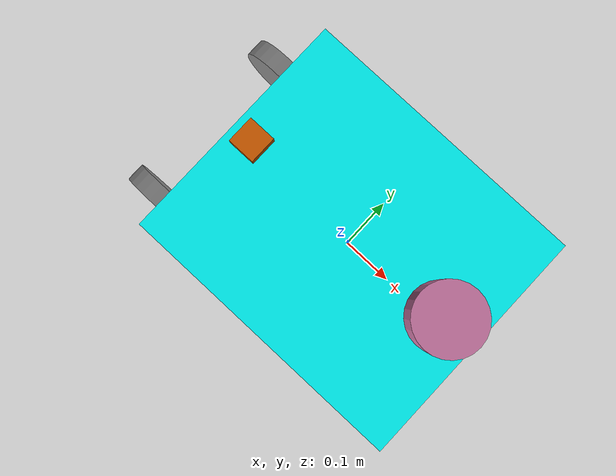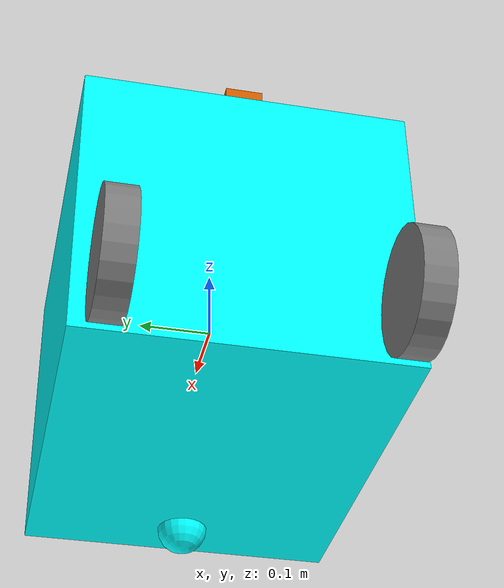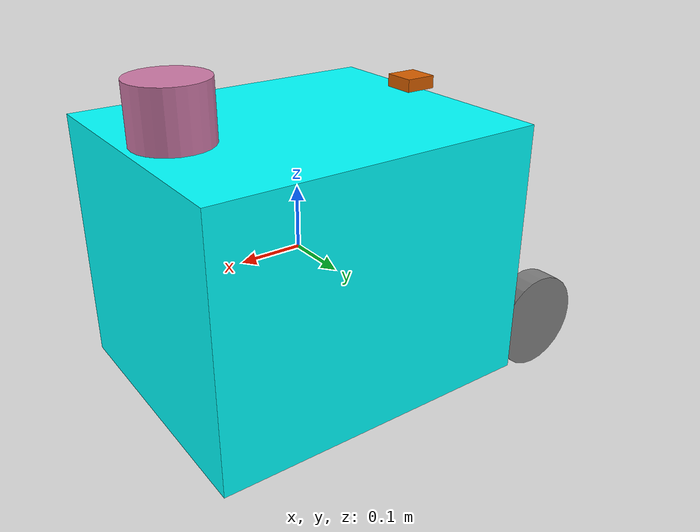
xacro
<?xml version="1.0"?>
<!-- Basic differential drive mobile base -->
<robot xmlns:xacro="http://www.ros.org/wiki/xacro" name="diffdrive_robot">
  <xacro:arg name="prefix" default="" />
  <xacro:arg name="use_sim_time" default="false" />
  <xacro:arg name="use_ros2_control" default="true" />

  <xacro:include filename="$(find diff_control)/ros2_control/inertial_macros.xacro" />
  <xacro:include filename="$(find diff_control)/ros2_control/diffbot_model_our.urdf.xacro" />

  <!-- Import Rviz colors -->
  <xacro:include filename="$(find diff_control)/ros2_control/diffbot.materials.xacro" />

  <!-- Import diffbot ros2_control description -->
  <xacro:include filename="$(find diff_control)/ros2_control/diffbot.ros2_control.xacro" />

  <xacro:diffbot_ros2_control name="DiffBot" prefix="$(arg prefix)" use_sim_time="$(arg use_sim_time)" />

</robot>

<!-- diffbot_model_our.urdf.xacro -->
<robot name="sam_bot" xmlns:xacro="http://ros.org/wiki/xacro">

  <!-- Define robot constants -->

  <xacro:property name="base_width" value="0.44"/>
  <xacro:property name="base_length" value="0.525"/>
  <xacro:property name="base_height" value="0.41"/>

  <xacro:property name="wheel_radius" value="0.08"/>
  <xacro:property name="wheel_width" value="0.04"/>
  <xacro:property name="wheel_ygap" value="0.04"/>
  <xacro:property name="wheel_zoff" value="0.16"/>
  <xacro:property name="wheel_xoff" value="0.3475"/>

  <xacro:property name="caster_xoff" value="0.2"/>

  <!-- Define some commonly used intertial properties  -->
  <xacro:macro name="box_inertia" params="m w h d">
    <inertial>
      <origin xyz="0 0 0" rpy="${pi/2} 0 ${pi/2}"/>
      <mass value="${m}"/>
      <inertia ixx="${(m/12) * (h*h + d*d)}" ixy="0.0" ixz="0.0" iyy="${(m/12) * (w*w + d*d)}" iyz="0.0" izz="${(m/12) * (w*w + h*h)}"/>
    </inertial>
  </xacro:macro>

  <xacro:macro name="cylinder_inertia" params="m r h">
    <inertial>
      <origin xyz="0 0 0" rpy="${pi/2} 0 0" />
      <mass value="${m}"/>
      <inertia ixx="${(m/12) * (3*r*r + h*h)}" ixy = "0" ixz = "0" iyy="${(m/12) * (3*r*r + h*h)}" iyz = "0" izz="${(m/2) * (r*r)}"/>
    </inertial>
  </xacro:macro>

  <xacro:macro name="sphere_inertia" params="m r">
    <inertial>
      <mass value="${m}"/>
      <inertia ixx="${(2/5) * m * (r*r)}" ixy="0.0" ixz="0.0" iyy="${(2/5) * m * (r*r)}" iyz="0.0" izz="${(2/5) * m * (r*r)}"/>
    </inertial>
  </xacro:macro>

  <!-- Robot Base -->
  <link name="base_link">
    <visual>
      <geometry>
        <box size="${base_length} ${base_width} ${base_height}"/>
      </geometry>
      <material name="Cyan">
        <color rgba="0 1.0 1.0 1.0"/>
      </material>
    </visual>

    <collision>
      <geometry>
        <box size="${base_length} ${base_width} ${base_height}"/>
      </geometry>
    </collision>

    <xacro:box_inertia m="1" w="${base_width}" d="${base_length}" h="${base_height}"/>
  </link>

   <!-- Robot Footprint -->
  <link name="base_footprint">
  	<xacro:box_inertia m="0" w="0" d="0" h="0"/>
  </link>

  <joint name="base_joint" type="fixed">
    <parent link="base_link"/>
    <child link="base_footprint"/>
    <origin xyz="0.0 0.0 ${-(wheel_radius+wheel_zoff)}" rpy="0 0 0"/>
  </joint>

  <!-- Wheels -->
  <xacro:macro name="wheel" params="prefix x_reflect y_reflect">
    <link name="${prefix}_link">
      <visual>
        <origin xyz="0 0 0" rpy="${pi/2} 0 0"/>
        <geometry>
            <cylinder radius="${wheel_radius}" length="${wheel_width}"/>
        </geometry>
        <material name="Gray">
          <color rgba="0.5 0.5 0.5 1.0"/>
        </material>
      </visual>

      <collision>
        <origin xyz="0 0 0" rpy="${pi/2} 0 0"/>
        <geometry>
          <cylinder radius="${wheel_radius}" length="${wheel_width}"/>
        </geometry>
      </collision>

      <xacro:cylinder_inertia m="1.5" r="${wheel_radius}" h="${wheel_width}"/>
    </link>

    <joint name="${prefix}_joint" type="continuous">
      <parent link="base_link"/>
      <child link="${prefix}_link"/>
      <origin xyz="${x_reflect*wheel_xoff} ${y_reflect*(base_width/2-wheel_ygap)} ${-wheel_zoff}" rpy="0 0 0"/>
      <axis xyz="0 1 0"/>
    </joint>
  </xacro:macro>

  <xacro:wheel prefix="left_wheel" x_reflect="-1" y_reflect="1" />
  <xacro:wheel prefix="right_wheel" x_reflect="-1" y_reflect="-1" />

    <!-- caster -->

    <link name="front_caster">
      <visual>
        <geometry>
          <sphere radius="${(wheel_radius+wheel_zoff-(base_height/2))}"/>
        </geometry>
        <material name="Cyan">
          <color rgba="0 1.0 1.0 1.0"/>
        </material>
      </visual>

      <collision>
        <origin xyz="0 0 0" rpy="0 0 0"/>
        <geometry>
          <sphere radius="${(wheel_radius+wheel_zoff-(base_height/2))}"/>
        </geometry>
      </collision>

      <xacro:sphere_inertia m="0.5" r="${(wheel_radius+wheel_zoff-(base_height/2))}"/>
    </link>

    <joint name="caster_joint" type="fixed">
      <parent link="base_link"/>
      <child link="front_caster"/>
      <origin xyz="${caster_xoff} 0.0 ${-(base_height/2)}" rpy="0 0 0"/>
    </joint>

  <!-- Small wheels -->

  <link name="imu_link">
    <visual>
      <geometry>
        <box size="0.05 0.05 0.02"/>
      </geometry>
    </visual>

    <collision>
      <geometry>
        <box size="0.05 0.05 0.02"/>
      </geometry>
    </collision>

    <xacro:box_inertia m="0.05" w="0.05" d="0.05" h="0.02"/>
  </link>

  <joint name="imu_joint" type="fixed">
    <parent link="base_link"/>
    <child link="imu_link"/>
    <origin xyz="-0.2175 0 0.23"/>
  </joint>

  <gazebo reference="imu_link">
  <sensor name="imu_sensor" type="imu">
   <plugin filename="libgazebo_ros_imu_sensor.so" name="imu_plugin">
      <ros>
        <namespace>/demo</namespace>
        <remapping>~/out:=imu</remapping>
      </ros>
      <initial_orientation_as_reference>false</initial_orientation_as_reference>
    </plugin>
    <always_on>true</always_on>
    <update_rate>100</update_rate>
    <visualize>true</visualize>
    <imu>
      <angular_velocity>
        <x>
          <noise type="gaussian">
            <mean>0.0</mean>
            <stddev>2e-4</stddev>
            <bias_mean>0.0000075</bias_mean>
            <bias_stddev>0.0000008</bias_stddev>
          </noise>
        </x>
        <y>
          <noise type="gaussian">
            <mean>0.0</mean>
            <stddev>2e-4</stddev>
            <bias_mean>0.0000075</bias_mean>
            <bias_stddev>0.0000008</bias_stddev>
          </noise>
        </y>
        <z>
          <noise type="gaussian">
            <mean>0.0</mean>
            <stddev>2e-4</stddev>
            <bias_mean>0.0000075</bias_mean>
            <bias_stddev>0.0000008</bias_stddev>
          </noise>
        </z>
      </angular_velocity>
      <linear_acceleration>
        <x>
          <noise type="gaussian">
            <mean>0.0</mean>
            <stddev>1.7e-2</stddev>
            <bias_mean>0.1</bias_mean>
            <bias_stddev>0.001</bias_stddev>
          </noise>
        </x>
        <y>
          <noise type="gaussian">
            <mean>0.0</mean>
            <stddev>1.7e-2</stddev>
            <bias_mean>0.1</bias_mean>
            <bias_stddev>0.001</bias_stddev>
          </noise>
        </y>
        <z>
          <noise type="gaussian">
            <mean>0.0</mean>
            <stddev>1.7e-2</stddev>
            <bias_mean>0.1</bias_mean>
            <bias_stddev>0.001</bias_stddev>
          </noise>
        </z>
      </linear_acceleration>
    </imu>
  </sensor>
</gazebo>

 <link name="lidar_link">
    <inertial>
      <origin xyz="0 0 0" rpy="0 0 0"/>
      <mass value="0.125"/>
      <inertia ixx="0.001"  ixy="0"  ixz="0" iyy="0.001" iyz="0" izz="0.001" />
    </inertial>

    <collision>
      <origin xyz="0 0 0" rpy="0 0 0"/>
      <geometry>
         <cylinder radius="0.06" length="0.09"/>
      </geometry>
    </collision>

    <visual>
      <origin xyz="0 0 0" rpy="0 0 0"/>
      <geometry>
         <cylinder radius="0.06" length="0.09"/>
      </geometry>
    </visual>
  </link>

  <joint name="lidar_joint" type="fixed">
    <parent link="base_link"/>
    <child link="lidar_link"/>
    <origin xyz="0.1925 0 0.25" rpy="0 0 0"/>
  </joint>

  <gazebo reference="lidar_link">
    <sensor name="lidar" type="ray">
      <always_on>true</always_on>
      <visualize>true</visualize>
      <update_rate>5</update_rate>
      <ray>
        <scan>
          <horizontal>
            <samples>360</samples>
            <resolution>1.000000</resolution>
            <min_angle>0.000000</min_angle>
            <max_angle>6.280000</max_angle>
          </horizontal>
        </scan>
        <range>
          <min>0.120000</min>
          <max>3.5</max>
          <resolution>0.015000</resolution>
        </range>
        <noise>
          <type>gaussian</type>
          <mean>0.0</mean>
          <stddev>0.01</stddev>
        </noise>
      </ray>
      <plugin name="scan" filename="libgazebo_ros_ray_sensor.so">
        <ros>
          <remapping>~/out:=scan</remapping>
        </ros>
        <output_type>sensor_msgs/LaserScan</output_type>
        <frame_name>lidar_link</frame_name>
      </plugin>
    </sensor>
  </gazebo>

</robot>
